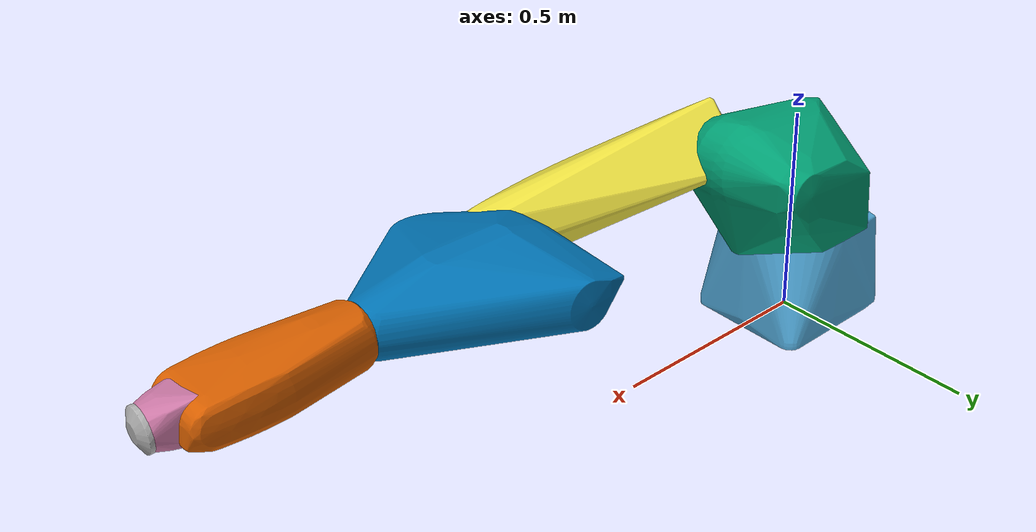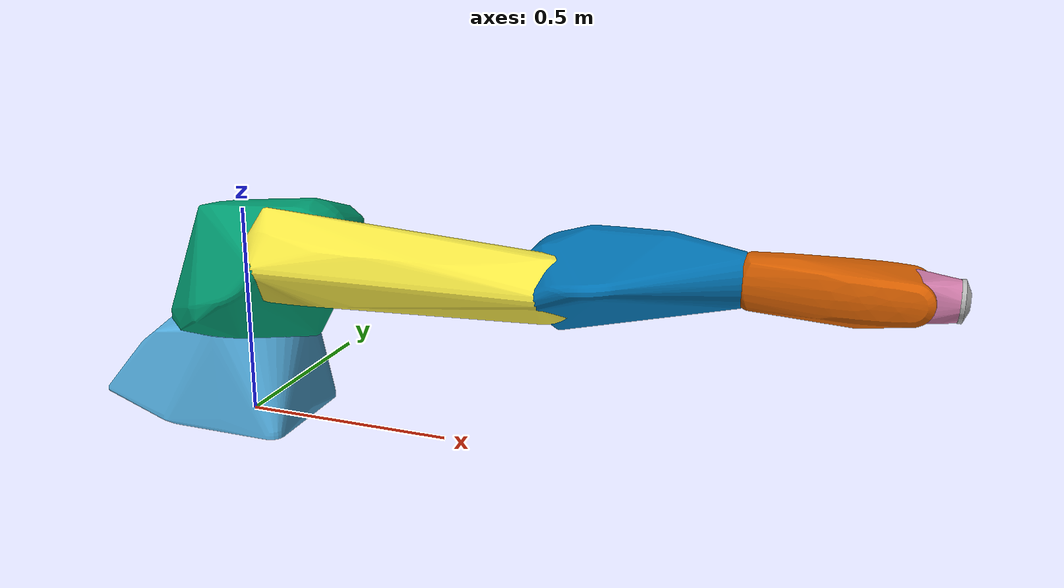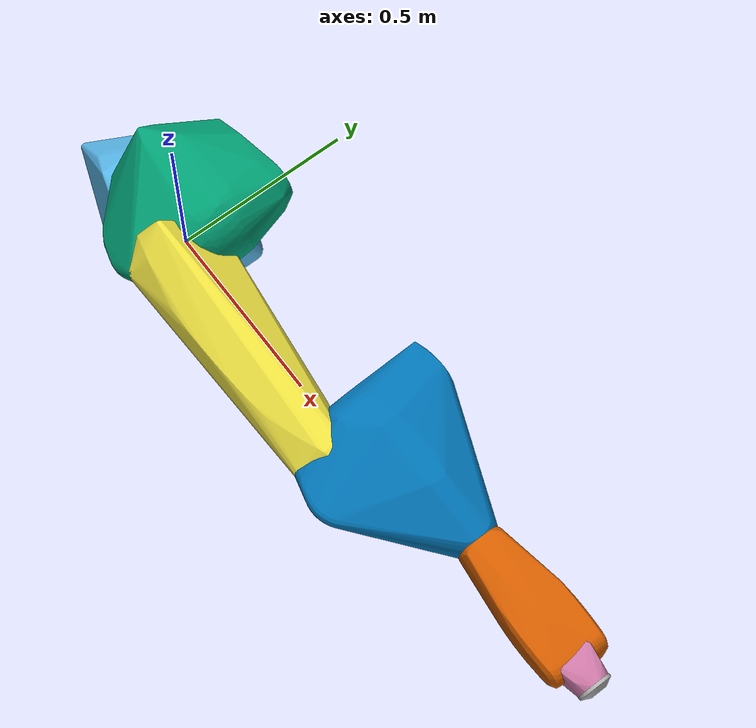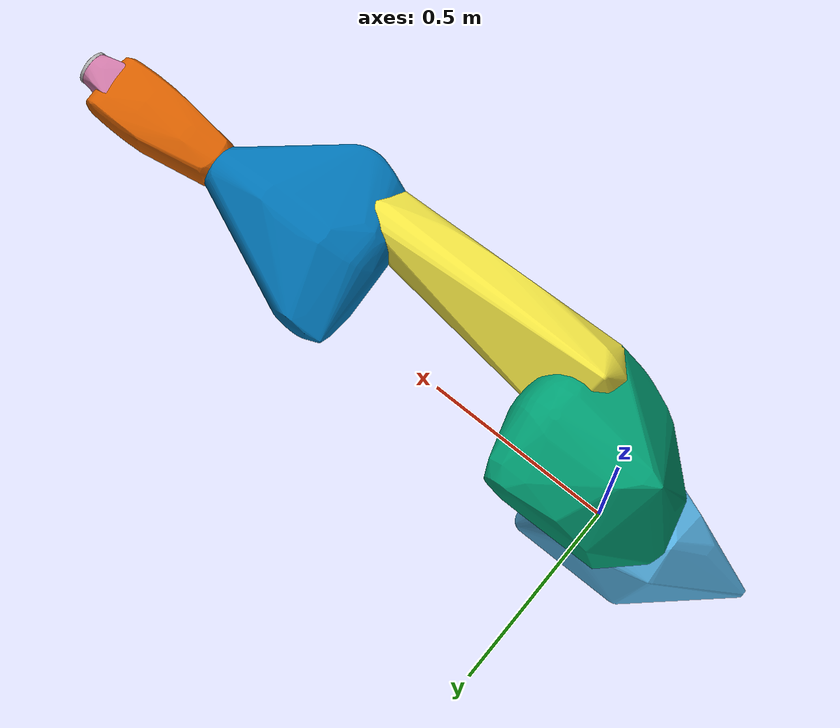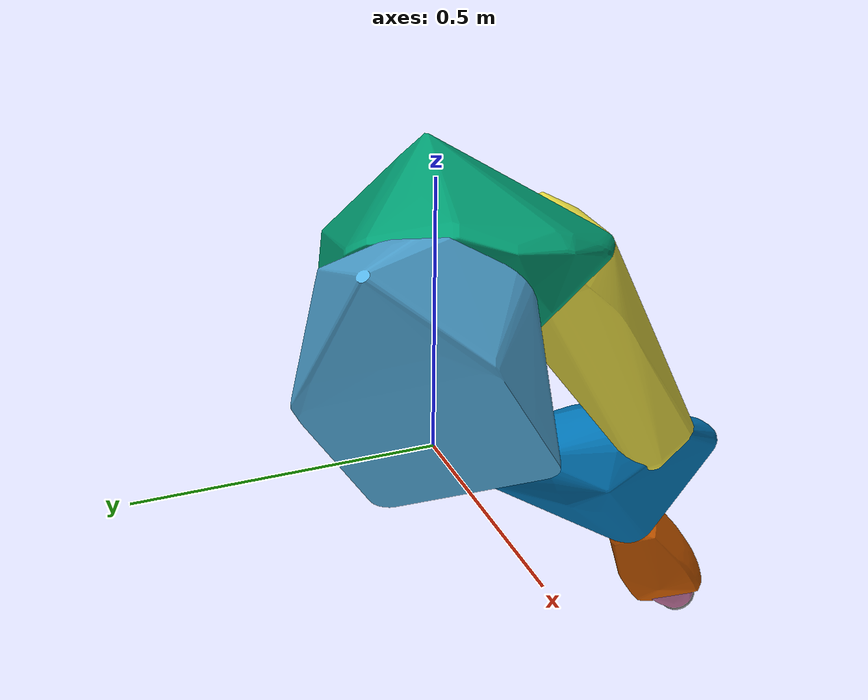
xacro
<?xml version="1.0"?>
<robot xmlns:xacro="http://www.ros.org/wiki/xacro" name="kr_10_r1440_2">
  <xacro:arg name="prefix" default=""/>
  <xacro:include filename="$(find kuka_robot_descriptions)/urdf/kr_10_r1440_2_macro.xacro"/>
  <link name="world"/>
  <xacro:kr_10_r1440_2 prefix="$(arg prefix)" parent="world">
    <origin xyz="0 0 0" rpy="0 0 0"/>
  </xacro:kr_10_r1440_2>
</robot>

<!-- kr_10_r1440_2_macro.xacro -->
<robot xmlns:xacro="http://www.ros.org/wiki/xacro">

  <!-- KUKA KR 10 R1440-2 - generated from RoboDK .robot -->
  <xacro:macro name="kr_10_r1440_2" params="prefix parent *origin">

    <material name="${prefix}kr_10_r1440_2_grey"><color rgba="0.85 0.85 0.85 1.0"/></material>

    <joint name="${prefix}base_joint" type="fixed">
      <xacro:insert_block name="origin"/>
      <parent link="${parent}"/>
      <child link="${prefix}base_link"/>
    </joint>

    <link name="${prefix}base_link">
      <visual>
        <origin xyz="0 0 0" rpy="0 0 0"/>
        <geometry>
          <mesh filename="package://kuka_robot_descriptions/meshes/kr_10_r1440_2/visual/base_link.dae" scale="0.001 0.001 0.001"/>
        </geometry>
      </visual>
      <collision>
        <origin xyz="0 0 0" rpy="0 0 0"/>
        <geometry>
          <mesh filename="package://kuka_robot_descriptions/meshes/kr_10_r1440_2/collision/base_link.stl" scale="0.001 0.001 0.001"/>
        </geometry>
      </collision>
    </link>

    <link name="${prefix}link_1">
      <visual>
        <origin xyz="0 0 0" rpy="0 0 0"/>
        <geometry>
          <mesh filename="package://kuka_robot_descriptions/meshes/kr_10_r1440_2/visual/link_1.dae" scale="0.001 0.001 0.001"/>
        </geometry>
      </visual>
      <collision>
        <origin xyz="0 0 0" rpy="0 0 0"/>
        <geometry>
          <mesh filename="package://kuka_robot_descriptions/meshes/kr_10_r1440_2/collision/link_1.stl" scale="0.001 0.001 0.001"/>
        </geometry>
      </collision>
    </link>

    <link name="${prefix}link_2">
      <visual>
        <origin xyz="0 0 0" rpy="0 0 0"/>
        <geometry>
          <mesh filename="package://kuka_robot_descriptions/meshes/kr_10_r1440_2/visual/link_2.dae" scale="0.001 0.001 0.001"/>
        </geometry>
      </visual>
      <collision>
        <origin xyz="0 0 0" rpy="0 0 0"/>
        <geometry>
          <mesh filename="package://kuka_robot_descriptions/meshes/kr_10_r1440_2/collision/link_2.stl" scale="0.001 0.001 0.001"/>
        </geometry>
      </collision>
    </link>

    <link name="${prefix}link_3">
      <visual>
        <origin xyz="0 0 0" rpy="0 0 0"/>
        <geometry>
          <mesh filename="package://kuka_robot_descriptions/meshes/kr_10_r1440_2/visual/link_3.dae" scale="0.001 0.001 0.001"/>
        </geometry>
      </visual>
      <collision>
        <origin xyz="0 0 0" rpy="0 0 0"/>
        <geometry>
          <mesh filename="package://kuka_robot_descriptions/meshes/kr_10_r1440_2/collision/link_3.stl" scale="0.001 0.001 0.001"/>
        </geometry>
      </collision>
    </link>

    <link name="${prefix}link_4">
      <visual>
        <origin xyz="0 0 0" rpy="0 0 0"/>
        <geometry>
          <mesh filename="package://kuka_robot_descriptions/meshes/kr_10_r1440_2/visual/link_4.dae" scale="0.001 0.001 0.001"/>
        </geometry>
      </visual>
      <collision>
        <origin xyz="0 0 0" rpy="0 0 0"/>
        <geometry>
          <mesh filename="package://kuka_robot_descriptions/meshes/kr_10_r1440_2/collision/link_4.stl" scale="0.001 0.001 0.001"/>
        </geometry>
      </collision>
    </link>

    <link name="${prefix}link_5">
      <visual>
        <origin xyz="0 0 0" rpy="0 0 0"/>
        <geometry>
          <mesh filename="package://kuka_robot_descriptions/meshes/kr_10_r1440_2/visual/link_5.dae" scale="0.001 0.001 0.001"/>
        </geometry>
      </visual>
      <collision>
        <origin xyz="0 0 0" rpy="0 0 0"/>
        <geometry>
          <mesh filename="package://kuka_robot_descriptions/meshes/kr_10_r1440_2/collision/link_5.stl" scale="0.001 0.001 0.001"/>
        </geometry>
      </collision>
    </link>

    <link name="${prefix}link_6">
      <visual>
        <origin xyz="0 0 0" rpy="0 0 0"/>
        <geometry>
          <mesh filename="package://kuka_robot_descriptions/meshes/kr_10_r1440_2/visual/link_6.dae" scale="0.001 0.001 0.001"/>
        </geometry>
      </visual>
      <collision>
        <origin xyz="0 0 0" rpy="0 0 0"/>
        <geometry>
          <mesh filename="package://kuka_robot_descriptions/meshes/kr_10_r1440_2/collision/link_6.stl" scale="0.001 0.001 0.001"/>
        </geometry>
      </collision>
    </link>

    <joint name="${prefix}joint_1" type="revolute">
      <parent link="${prefix}base_link"/>
      <child link="${prefix}link_1"/>
      <origin xyz="0 0 0.425" rpy="0 -0 0"/>
      <axis xyz="0 0 1"/>
      <limit lower="-2.9670597" upper="2.9670597" effort="100.0" velocity="3.1416"/>
    </joint>

    <joint name="${prefix}joint_2" type="revolute">
      <parent link="${prefix}link_1"/>
      <child link="${prefix}link_2"/>
      <origin xyz="0.17 0 0" rpy="-1.5707963 -0 0"/>
      <axis xyz="0 0 1"/>
      <limit lower="-3.2288591" upper="1.134464" effort="100.0" velocity="3.1416"/>
    </joint>

    <joint name="${prefix}joint_3" type="revolute">
      <parent link="${prefix}link_2"/>
      <child link="${prefix}link_3"/>
      <origin xyz="0.61 0 0" rpy="0 -0 -1.5707963"/>
      <axis xyz="0 0 1"/>
      <limit lower="-2.3911011" upper="2.8448867" effort="100.0" velocity="3.1416"/>
    </joint>

    <joint name="${prefix}joint_4" type="revolute">
      <parent link="${prefix}link_3"/>
      <child link="${prefix}link_4"/>
      <origin xyz="0.02 0.66 4.0413344e-17" rpy="-1.5707963 -0 0"/>
      <axis xyz="0 0 1"/>
      <limit lower="-3.2288591" upper="3.2288591" effort="100.0" velocity="3.1416"/>
    </joint>

    <joint name="${prefix}joint_5" type="revolute">
      <parent link="${prefix}link_4"/>
      <child link="${prefix}link_5"/>
      <origin xyz="0 0 0" rpy="1.5707963 -0 0"/>
      <axis xyz="0 0 1"/>
      <limit lower="-2.0943951" upper="2.0943951" effort="100.0" velocity="3.1416"/>
    </joint>

    <joint name="${prefix}joint_6" type="revolute">
      <parent link="${prefix}link_5"/>
      <child link="${prefix}link_6"/>
      <origin xyz="0 0.1 6.123234e-18" rpy="1.5707963 1.2246468e-16 3.1415927"/>
      <axis xyz="0 0 1"/>
      <limit lower="-6.1086524" upper="6.1086524" effort="100.0" velocity="3.1416"/>
    </joint>

    <link name="${prefix}flange"/>
    <joint name="${prefix}link_6-flange" type="fixed">
      <parent link="${prefix}link_6"/>
      <child link="${prefix}flange"/>
      <origin xyz="0 0 0" rpy="0 0 0"/>
    </joint>
    <link name="${prefix}tool0"/>
    <joint name="${prefix}flange-tool0" type="fixed">
      <parent link="${prefix}flange"/>
      <child link="${prefix}tool0"/>
      <origin xyz="0 0 0" rpy="0 0 0"/>
    </joint>

  </xacro:macro>
</robot>
